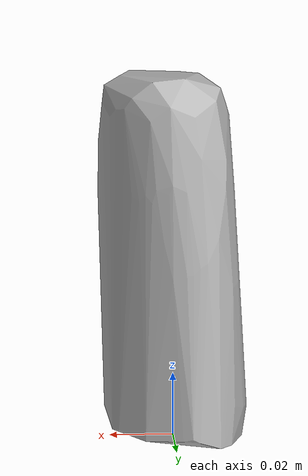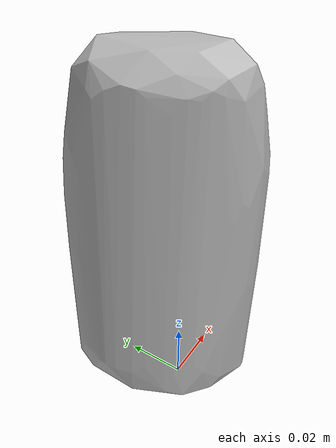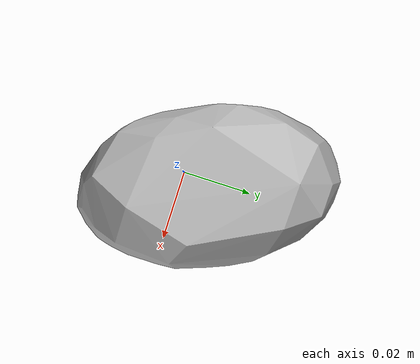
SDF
<?xml version='1.0'?>
<sdf version="1.4">
  <model name="crest_complete_minty_fresh">
    <static>false</static>
    <link name="link">
      <inertial>
        <pose>0.001969544552065342 0.008303506005355163 0.057281634300476655 3.130238863054829 -0.041075171554008805 -2.7181563528842356</pose>
        <mass>0.017984242520794568</mass>
        <inertia>
          <ixx>2.0604078597580024e-05</ixx>
          <ixy>1.8946643862192677e-21</ixy>
          <ixz>5.183980501835775e-22</ixz>
          <iyy>1.8151895150350816e-05</iyy>
          <iyz>-3.3072649474610932e-21</iyz>
          <izz>5.389173549840028e-06</izz>
        </inertia>
      </inertial>
      <collision name="collision">
        <geometry>
          <mesh>
            <!-- Use a downsampled mesh for collisions -->
            <uri>model:///crest_complete_minty_fresh/crest_complete_minty_fresh_250_collision.obj</uri>
	        </mesh>
        </geometry>
        <surface>
      </surface>
      </collision>
      <visual name="visual">
        <geometry>
          <mesh>
            <uri>model:///crest_complete_minty_fresh/optimized_tsdf_texture_mapped_mesh.obj</uri>
	        </mesh>
        </geometry>
        <material>
          <script>
            <uri>model:///crest_complete_minty_fresh/crest_complete_minty_fresh.material</uri>
            <name>crest_complete_minty_fresh</name>
          </script>
        </material>
      </visual>
    </link>
  </model>
</sdf>
